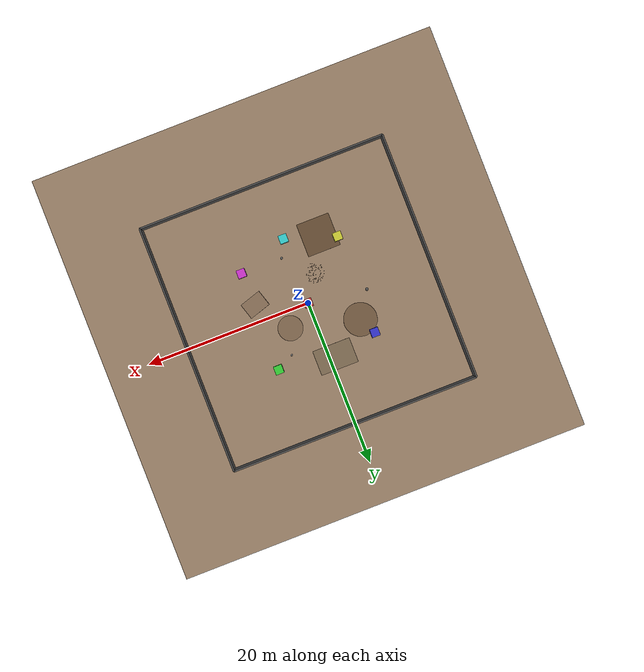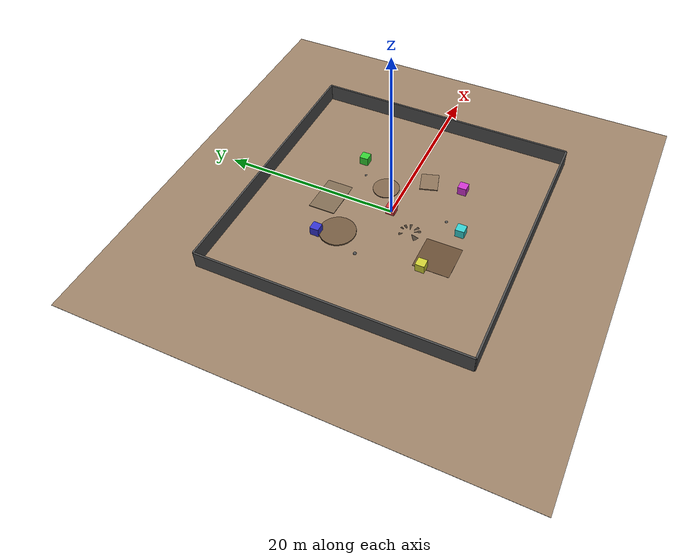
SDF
<?xml version="1.0" ?>
<sdf version="1.6">
  <world name="default">

    <!-- ─────────── ESCENA: iluminación & sombras activadas para realismo ─────────── -->
    <scene>
      <ambient>0.4 0.4 0.4 1</ambient>
      <background>0.7 0.7 0.7 1</background>
      <shadows>true</shadows>  <!-- Activamos sombras para ver mejor las irregularidades -->
    </scene>

    <!-- ─────────── PLUGINS ROS–GAZEBO ─────────── -->
    <plugin name="gazebo_ros_api_plugin" filename="libgazebo_ros_api_plugin.so"/>
    <plugin name="gazebo_ros_factory"  filename="libgazebo_ros_factory.so"/>
    <plugin name="gazebo_ros_state"    filename="libgazebo_ros_state.so"/>

    <!-- ─────────── SOL ─────────── -->
    <include><uri>model://sun</uri></include>

    <!-- 🌍 TERRENO BASE CON IMPERFECCIONES                                              -->

    <!-- Base del terreno principal -->
    <model name="ground_base">
      <static>true</static>
      <pose>0 0 -0.01 0 0 0</pose>  <!-- Ligeramente bajo para que las imperfecciones sobresalgan -->
      <link name="link">
        <collision name="collision">
          <geometry>
            <box><size>50 50 0.02</size></box>  <!-- Base grande y delgada -->
          </geometry>
          <surface>
            <friction>
              <ode><mu>0.8</mu><mu2>0.8</mu2></ode>  <!-- Fricción realista -->
            </friction>
          </surface>
        </collision>
        <visual name="visual">
          <geometry>
            <box><size>50 50 0.02</size></box>
          </geometry>
          <material>
            <ambient>0.6 0.5 0.4 1</ambient>  <!-- Color tierra -->
            <diffuse>0.6 0.5 0.4 1</diffuse>
          </material>
        </visual>
      </link>
    </model>

    <!-- 🗻 IMPERFECCIONES DEL TERRENO - MONTÍCULOS Y DEPRESIONES                       -->

    <!-- Montículo 1: Pequeña elevación -->
    <model name="bump_01">
      <static>true</static>
      <pose>3 2 0.05 0 0 0</pose>
      <link name="link">
        <collision name="collision">
          <geometry>
            <cylinder><radius>1.5</radius><length>0.1</length></cylinder>
          </geometry>
        </collision>
        <visual name="visual">
          <geometry>
            <cylinder><radius>1.5</radius><length>0.1</length></cylinder>
          </geometry>
          <material>
            <ambient>0.5 0.4 0.3 1</ambient>
            <diffuse>0.5 0.4 0.3 1</diffuse>
          </material>
        </visual>
      </link>
    </model>

    <!-- Montículo 2: Elevación más pronunciada -->
    <model name="bump_02">
      <static>true</static>
      <pose>-5 4 0.08 0 0 0</pose>
      <link name="link">
        <collision name="collision">
          <geometry>
            <cylinder><radius>2.0</radius><length>0.16</length></cylinder>
          </geometry>
        </collision>
        <visual name="visual">
          <geometry>
            <cylinder><radius>2.0</radius><length>0.16</length></cylinder>
          </geometry>
          <material>
            <ambient>0.45 0.35 0.25 1</ambient>
            <diffuse>0.45 0.35 0.25 1</diffuse>
          </material>
        </visual>
      </link>
    </model>

    <!-- Depresión 1: Pequeño hoyo -->
    <model name="depression_01">
      <static>true</static>
      <pose>-2 -3 -0.03 0 0 0</pose>
      <link name="link">
        <collision name="collision">
          <geometry>
            <cylinder><radius>1.2</radius><length>0.06</length></cylinder>
          </geometry>
        </collision>
        <visual name="visual">
          <geometry>
            <cylinder><radius>1.2</radius><length>0.06</length></cylinder>
          </geometry>
          <material>
            <ambient>0.3 0.25 0.2 1</ambient>  <!-- Más oscuro para simular depresión -->
            <diffuse>0.3 0.25 0.2 1</diffuse>
          </material>
        </visual>
      </link>
    </model>

    <!-- Montículo irregular 3 -->
    <model name="bump_03">
      <static>true</static>
      <pose>6 -2 0.06 0 0.1 0.3</pose>  <!-- Ligeramente inclinado -->
      <link name="link">
        <collision name="collision">
          <geometry>
            <box><size>3 2 0.12</size></box>  <!-- Forma rectangular irregular -->
          </geometry>
        </collision>
        <visual name="visual">
          <geometry>
            <box><size>3 2 0.12</size></box>
          </geometry>
          <material>
            <ambient>0.55 0.45 0.35 1</ambient>
            <diffuse>0.55 0.45 0.35 1</diffuse>
          </material>
        </visual>
      </link>
    </model>

    <!-- Pequeñas rocas esparcidas -->
    <model name="rock_01">
      <static>true</static>
      <pose>1 -6 0.02 0 0 0</pose>
      <link name="link">
        <collision name="collision">
          <geometry>
            <sphere><radius>0.15</radius></sphere>
          </geometry>
        </collision>
        <visual name="visual">
          <geometry>
            <sphere><radius>0.15</radius></sphere>
          </geometry>
          <material>
            <ambient>0.4 0.4 0.4 1</ambient>  <!-- Gris para roca -->
            <diffuse>0.4 0.4 0.4 1</diffuse>
          </material>
        </visual>
      </link>
    </model>

    <model name="rock_02">
      <static>true</static>
      <pose>-7 1 0.025 0 0 0</pose>
      <link name="link">
        <collision name="collision">
          <geometry>
            <sphere><radius>0.18</radius></sphere>
          </geometry>
        </collision>
        <visual name="visual">
          <geometry>
            <sphere><radius>0.18</radius></sphere>
          </geometry>
          <material>
            <ambient>0.35 0.35 0.35 1</ambient>
            <diffuse>0.35 0.35 0.35 1</diffuse>
          </material>
        </visual>
      </link>
    </model>

    <model name="rock_03">
      <static>true</static>
      <pose>4 5 0.02 0 0 0</pose>
      <link name="link">
        <collision name="collision">
          <geometry>
            <sphere><radius>0.12</radius></sphere>
          </geometry>
        </collision>
        <visual name="visual">
          <geometry>
            <sphere><radius>0.12</radius></sphere>
          </geometry>
          <material>
            <ambient>0.45 0.45 0.45 1</ambient>
            <diffuse>0.45 0.45 0.45 1</diffuse>
          </material>
        </visual>
      </link>
    </model>

    <!-- Rampa suave para crear desnivel -->
    <model name="slope_01">
      <static>true</static>
      <pose>0 7 0.04 0 0.05 0</pose>  <!-- Inclinación de 0.05 radianes ≈ 3° -->
      <link name="link">
        <collision name="collision">
          <geometry>
            <box><size>6 3 0.08</size></box>
          </geometry>
        </collision>
        <visual name="visual">
          <geometry>
            <box><size>6 3 0.08</size></box>
          </geometry>
          <material>
            <ambient>0.5 0.42 0.32 1</ambient>
            <diffuse>0.5 0.42 0.32 1</diffuse>
          </material>
        </visual>
      </link>
    </model>

    <!-- Área con textura rugosa simulada -->
    <model name="rough_patch_01">
      <static>true</static>
      <pose>-4 -7 0.01 0 0 0</pose>
      <link name="link">
        <collision name="collision">
          <geometry>
            <box><size>4 4 0.02</size></box>
          </geometry>
          <surface>
            <friction>
              <ode><mu>1.2</mu><mu2>1.2</mu2></ode>  <!-- Mayor fricción para simular rugosidad -->
            </friction>
          </surface>
        </collision>
        <visual name="visual">
          <geometry>
            <box><size>4 4 0.02</size></box>
          </geometry>
          <material>
            <ambient>0.4 0.3 0.2 1</ambient>  <!-- Más oscuro para diferenciarlo -->
            <diffuse>0.4 0.3 0.2 1</diffuse>
          </material>
        </visual>
      </link>
    </model>

    <!-- ─────────── PAREDES 30x30 (MISMAS DE ANTES) ─────────── -->
    <model name="wall_left">
      <static>true</static>
      <pose>-15 0 1 0 0 0</pose>
      <link name="link">
        <collision name="collision">
          <geometry>
            <box><size>0.2 30 2</size></box>
          </geometry>
        </collision>
        <visual name="visual">
          <geometry>
            <box><size>0.2 30 2</size></box>
          </geometry>
          <material>
            <ambient>0.3 0.3 0.3 1</ambient>
            <diffuse>0.3 0.3 0.3 1</diffuse>
          </material>
        </visual>
      </link>
    </model>

    <model name="wall_right">
      <static>true</static>
      <pose>15 0 1 0 0 0</pose>
      <link name="link">
        <collision name="collision">
          <geometry>
            <box><size>0.2 30 2</size></box>
          </geometry>
        </collision>
        <visual name="visual">
          <geometry>
            <box><size>0.2 30 2</size></box>
          </geometry>
          <material>
            <ambient>0.3 0.3 0.3 1</ambient>
            <diffuse>0.3 0.3 0.3 1</diffuse>
          </material>
        </visual>
      </link>
    </model>

    <model name="wall_bottom">
      <static>true</static>
      <pose>0 -15 1 0 0 0</pose>
      <link name="link">
        <collision name="collision">
          <geometry>
            <box><size>30 0.2 2</size></box>
          </geometry>
        </collision>
        <visual name="visual">
          <geometry>
            <box><size>30 0.2 2</size></box>
          </geometry>
          <material>
            <ambient>0.3 0.3 0.3 1</ambient>
            <diffuse>0.3 0.3 0.3 1</diffuse>
          </material>
        </visual>
      </link>
    </model>

    <model name="wall_top">
      <static>true</static>
      <pose>0 15 1 0 0 0</pose>
      <link name="link">
        <collision name="collision">
          <geometry>
            <box><size>30 0.2 2</size></box>
          </geometry>
        </collision>
        <visual name="visual">
          <geometry>
            <box><size>30 0.2 2</size></box>
          </geometry>
          <material>
            <ambient>0.3 0.3 0.3 1</ambient>
            <diffuse>0.3 0.3 0.3 1</diffuse>
          </material>
        </visual>
      </link>
    </model>

    <!-- 📦 CAJAS DINÁMICAS (MISMAS DE ANTES)                                            -->

    <model name="box_00">
      <pose>0 0 0.5 0 0 0</pose>
      <static>false</static>
      <link name="link">
        <inertial>
          <mass>1.0</mass>
          <inertia>
            <ixx>0.167</ixx><iyy>0.167</iyy><izz>0.167</izz>
            <ixy>0</ixy><ixz>0</ixz><iyz>0</iyz>
          </inertia>
        </inertial>
        <visual name="visual">
          <geometry>
            <box><size>1 1 1</size></box>
          </geometry>
          <material>
            <ambient>0.8 0.2 0.2 1</ambient>
            <diffuse>0.8 0.2 0.2 1</diffuse>
          </material>
        </visual>
        <collision name="collision">
          <geometry>
            <box><size>1 1 1</size></box>
          </geometry>
        </collision>
      </link>
    </model>

    <model name="box_01">
      <pose>6 6 0.5 0 0 0</pose>
      <static>false</static>
      <link name="link">
        <inertial>
          <mass>1.0</mass>
          <inertia>
            <ixx>0.167</ixx><iyy>0.167</iyy><izz>0.167</izz>
            <ixy>0</ixy><ixz>0</ixz><iyz>0</iyz>
          </inertia>
        </inertial>
        <visual name="visual">
          <geometry>
            <box><size>1 1 1</size></box>
          </geometry>
          <material>
            <ambient>0.2 0.8 0.2 1</ambient>
            <diffuse>0.2 0.8 0.2 1</diffuse>
          </material>
        </visual>
        <collision name="collision">
          <geometry>
            <box><size>1 1 1</size></box>
          </geometry>
        </collision>
      </link>
    </model>

    <model name="box_02">
      <pose>-6 6 0.5 0 0 0</pose>
      <static>false</static>
      <link name="link">
        <inertial>
          <mass>1.0</mass>
          <inertia>
            <ixx>0.167</ixx><iyy>0.167</iyy><izz>0.167</izz>
            <ixy>0</ixy><ixz>0</ixz><iyz>0</iyz>
          </inertia>
        </inertial>
        <visual name="visual">
          <geometry>
            <box><size>1 1 1</size></box>
          </geometry>
          <material>
            <ambient>0.2 0.2 0.8 1</ambient>
            <diffuse>0.2 0.2 0.8 1</diffuse>
          </material>
        </visual>
        <collision name="collision">
          <geometry>
            <box><size>1 1 1</size></box>
          </geometry>
        </collision>
      </link>
    </model>

    <model name="box_03">
      <pose>-6 -6 0.5 0 0 0</pose>
      <static>false</static>
      <link name="link">
        <inertial>
          <mass>1.0</mass>
          <inertia>
            <ixx>0.167</ixx><iyy>0.167</iyy><izz>0.167</izz>
            <ixy>0</ixy><ixz>0</ixz><iyz>0</iyz>
          </inertia>
        </inertial>
        <visual name="visual">
          <geometry>
            <box><size>1 1 1</size></box>
          </geometry>
          <material>
            <ambient>0.8 0.8 0.2 1</ambient>
            <diffuse>0.8 0.8 0.2 1</diffuse>
          </material>
        </visual>
        <collision name="collision">
          <geometry>
            <box><size>1 1 1</size></box>
          </geometry>
        </collision>
      </link>
    </model>

    <model name="box_04">
      <pose>6 -6 0.5 0 0 0</pose>
      <static>false</static>
      <link name="link">
        <inertial>
          <mass>1.0</mass>
          <inertia>
            <ixx>0.167</ixx><iyy>0.167</iyy><izz>0.167</izz>
            <ixy>0</ixy><ixz>0</ixz><iyz>0</iyz>
          </inertia>
        </inertial>
        <visual name="visual">
          <geometry>
            <box><size>1 1 1</size></box>
          </geometry>
          <material>
            <ambient>0.8 0.2 0.8 1</ambient>
            <diffuse>0.8 0.2 0.8 1</diffuse>
          </material>
        </visual>
        <collision name="collision">
          <geometry>
            <box><size>1 1 1</size></box>
          </geometry>
        </collision>
      </link>
    </model>

    <model name="box_05">
      <pose>0 -8 0.5 0 0 0</pose>
      <static>false</static>
      <link name="link">
        <inertial>
          <mass>1.0</mass>
          <inertia>
            <ixx>0.167</ixx><iyy>0.167</iyy><izz>0.167</izz>
            <ixy>0</ixy><ixz>0</ixz><iyz>0</iyz>
          </inertia>
        </inertial>
        <visual name="visual">
          <geometry>
            <box><size>1 1 1</size></box>
          </geometry>
          <material>
            <ambient>0.2 0.8 0.8 1</ambient>
            <diffuse>0.2 0.8 0.8 1</diffuse>
          </material>
        </visual>
        <collision name="collision">
          <geometry>
            <box><size>1 1 1</size></box>
          </geometry>
        </collision>
      </link>
    </model>

    <!-- ─────────── FÍSICA ─────────── -->
    <physics name="default_physics" type="ode">
      <real_time_factor>1.0</real_time_factor>
      <real_time_update_rate>1000</real_time_update_rate>
      <max_step_size>0.004</max_step_size>
      <use_real_time>false</use_real_time>
      <ode>
        <solver><type>quick</type><iters>40</iters><sor>1.3</sor></solver>
        <constraints><cfm>1e-5</cfm><erp>0.3</erp></constraints>
      </ode>
    </physics>

    <!-- ─────────── GUI ─────────── -->
    <gui fullscreen="0">
      <camera name="user_camera">
        <pose>0 -25 20 0 0.6 1.57</pose>
        <view_controller>orbit</view_controller>
        <projection_type>perspective</projection_type>
      </camera>
    </gui>

  </world>
</sdf>
